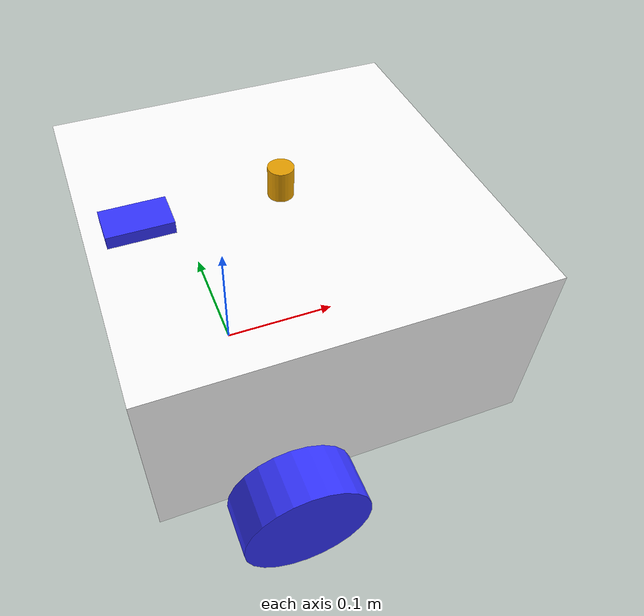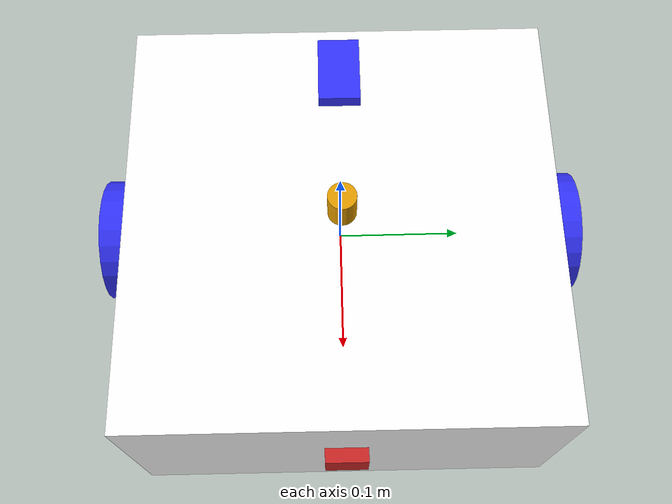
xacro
<?xml version="1.0"?>
<robot xmlns:xacro="http://www.ros.org/wiki/xacro"  name="robot">

    <xacro:include filename="base_robot/robot_core.xacro" />
    <xacro:include filename="base_robot/gazebo_control.xacro" />

    <xacro:include filename="sensors/depth_camera.xacro" />
    <xacro:include filename="sensors/imu.xacro" />
    <xacro:include filename="sensors/gps.xacro" />

</robot>

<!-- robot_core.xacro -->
<robot xmlns:xacro="http://www.ros.org/wiki/xacro" >

    <xacro:include filename="inertial_macros.xacro"/>

    <material name="white">
        <color rgba="1 1 1 1" />
    </material>

    <material name="orange">
        <color rgba="1 0.3 0.1 1"/>
    </material>

    <material name="blue">
        <color rgba="0.2 0.2 1 1"/>
    </material>

    <material name="black">
        <color rgba="0 0 0 1"/>
    </material>

    <!-- BASE LINK -->

    <link name="base_link">

    </link>

    <!-- CHASSIS LINK -->

    <joint name="chassis_joint" type="fixed">
        <parent link="base_link"/>
        <child link="chassis"/>
        <origin xyz="-0.1 0 0"/>
    </joint>

    <link name="chassis">
        <visual>
            <origin xyz="0.15 0 0.075"/>
            <geometry>
                <box size="0.3 0.3 0.15"/>
            </geometry>
            <material name="white"/>
        </visual>
        <collision>
            <origin xyz="0.15 0 0.075"/>
            <geometry>
                <box size="0.3 0.3 0.15"/>
            </geometry>
        </collision>
        <xacro:inertial_box mass="0.5" x="0.3" y="0.3" z="0.15">
            <origin xyz="0.15 0 0.075" rpy="0 0 0"/>
        </xacro:inertial_box>
    </link>

    <gazebo reference="chassis">
        <material>Gazebo/White</material>
    </gazebo>

    <!-- LEFT WHEEL LINK -->

    <joint name="left_wheel_joint" type="continuous">
        <parent link="base_link"/>
        <child link="left_wheel"/>
        <origin xyz="0 0.175 0" rpy="-${pi/2} 0 0" />
        <axis xyz="0 0 1"/>
    </joint>

    <link name="left_wheel">
        <visual>
            <geometry>
                <cylinder radius="0.05" length="0.04"/>
            </geometry>
            <material name="blue"/>
        </visual>
        <collision>
            <geometry>
                <cylinder radius="0.05" length="0.04"/>
            </geometry>
        </collision>
        <xacro:inertial_cylinder mass="0.1" length="0.04" radius="0.05">
            <origin xyz="0 0 0" rpy="0 0 0"/>
        </xacro:inertial_cylinder>
    </link>

    <!-- RIGHT WHEEL LINK -->

    <joint name="right_wheel_joint" type="continuous">
        <parent link="base_link"/>
        <child link="right_wheel"/>
        <origin xyz="0 -0.175 0" rpy="${pi/2} 0 0" />
        <axis xyz="0 0 -1"/>
    </joint>

    <link name="right_wheel">
        <visual>
            <geometry>
                <cylinder radius="0.05" length="0.04"/>
            </geometry>
            <material name="blue"/>
        </visual>
        <collision>
            <geometry>
                <cylinder radius="0.05" length="0.04"/>
            </geometry>
        </collision>
        <xacro:inertial_cylinder mass="0.1" length="0.04" radius="0.05">
            <origin xyz="0 0 0" rpy="0 0 0"/>
        </xacro:inertial_cylinder>
    </link>

    <!-- CASTER WHEEL LINK -->

    <joint name="caster_wheel_joint" type="fixed">
        <parent link="chassis"/>
        <child link="caster_wheel"/>
        <origin xyz="0.24 0 0"/>
    </joint>

    <link name="caster_wheel">
        <visual>
            <geometry>
                <sphere radius="0.05"/>
            </geometry>
            <material name="black"/>
        </visual>
        <collision>
            <geometry>
                <sphere radius="0.05"/>
            </geometry>
        </collision>
        <xacro:inertial_sphere mass="0.1" radius="0.05">
            <origin xyz="0 0 0" rpy="0 0 0"/>
        </xacro:inertial_sphere>
    </link>

    <gazebo reference="caster_wheel">
        <material>Gazebo/Black</material>
        <mu1 value="0.001"/>
        <mu2 value="0.001"/>
    </gazebo>

</robot>

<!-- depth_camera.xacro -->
<robot xmlns:xacro="http://www.ros.org/wiki/xacro" >
    <joint name="camera_joint" type="fixed">
        <parent link="chassis"/>
        <child link="camera_link"/>
        <origin xyz="0.305 0 0.08" rpy="0 0 0"/>
    </joint>

    <link name="camera_link">
        <visual>
            <geometry>
                <box size="0.010 0.03 0.03"/>
            </geometry>
            <material name="red"/>
        </visual>
    </link>

    <joint name="camera_optical_joint" type="fixed">
        <parent link="camera_link"/>
        <child link="camera_link_optical"/>
        <origin xyz="0 0 0" rpy="${-pi/2} 0 ${-pi/2}"/>
    </joint>

    <link name="camera_link_optical"></link>

    <gazebo reference="camera_link">
        <material>Gazebo/Red</material>

        <sensor name="camera" type="depth">
            <pose> 0 0 0 0 0 0 </pose>
            <visualize>true</visualize>
            <update_rate>10</update_rate>
            <camera>
                <horizontal_fov>1.089</horizontal_fov>
                <image>
                    <format>R8G8B8</format>
                    <width>640</width>
                    <height>480</height>
                </image>
                <clip>
                    <near>0.05</near>
                    <far>8.0</far>
                </clip>
            </camera>
            <plugin name="camera_controller" filename="libgazebo_ros_camera.so">
                <frame_name>camera_link_optical</frame_name>
            </plugin>
        </sensor>
    </gazebo>

</robot>

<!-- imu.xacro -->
<robot xmlns:xacro="http://www.ros.org/wiki/xacro" name="imu">
    <joint name="imu_joint" type="fixed">
        <parent link="chassis"/>
        <child link="imu_link"/>
        <origin xyz="0.04 0 0.15" rpy="0 0 0"/>
    </joint>
    <link name="imu_link">
        <visual>
            <geometry>
                <box size="0.05 0.03 0.02"/>
            </geometry>
            <material name="blue"/>
        </visual>
        <collision>
            <geometry>
                <box size="0.05 0.03 0.02"/>
            </geometry>
        </collision>
        <xacro:inertial_box mass="0.05" x="0.05" y="0.03" z="0.02">
            <origin xyz="0 0 0" rpy="0 0 0"/>
        </xacro:inertial_box>
    </link>
    <gazebo reference="imu_link">
        <material>Gazebo/Blue</material>
        <sensor name="imu_sensor" type="imu">
            <always_on>true</always_on>
            <update_rate>50.0</update_rate>
            <plugin name="imu_controller" filename="libgazebo_ros_imu_sensor.so">
                <ros>
                    <argument>~/out:=imu/data</argument>
                </ros>
                <output_type>sensor_msgs/Imu</output_type>
                <frame_name>imu_link</frame_name>
                <linear_acceleration_stddev>0.2</linear_acceleration_stddev>
                <angular_velocity_stddev>0.1</angular_velocity_stddev>
                <orientation_stddev>0.5</orientation_stddev>
            </plugin>
        </sensor>
    </gazebo>
</robot>

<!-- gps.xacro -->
<robot xmlns:xacro="http://www.ros.org/wiki/xacro">

  <joint name="gps_joint" type="fixed">
    <parent link="chassis"/>
    <child link="gps_link"/>
    <origin xyz="0.15 0 0.16" rpy="0 0 0"/>
  </joint>

  <link name="gps_link">
    <visual>
      <origin xyz="0 0 0"/>
      <geometry>
        <cylinder radius="0.01" length="0.03"/>
      </geometry>
    </visual>
  </link>

  <gazebo reference="gps_link">
    <sensor name="gps" type="gps">
      <always_on>true</always_on>
      <update_rate>10</update_rate>

      <gps>
        <position_sensing>
          <horizontal>
            <noise type="gaussian">
              <mean>0.0</mean>
              <stddev>1.5</stddev>            <!-- meters -->
              <bias_mean>0.0</bias_mean>
              <bias_stddev>0.0</bias_stddev>
            </noise>
          </horizontal>
          <vertical>
            <noise type="gaussian">
              <mean>0.0</mean>
              <stddev>3.0</stddev>            <!-- meters -->
              <bias_mean>0.0</bias_mean>
              <bias_stddev>0.0</bias_stddev>
            </noise>
          </vertical>
        </position_sensing>
        <velocity_sensing>
          <horizontal>
            <noise type="gaussian">
              <mean>0.0</mean>
              <stddev>0.1</stddev>
            </noise>
          </horizontal>
          <vertical>
            <noise type="gaussian">
              <mean>0.0</mean>
              <stddev>0.2</stddev>
            </noise>
          </vertical>
        </velocity_sensing>
      </gps>

      <!-- ROS 2 Humble Gazebo Classic GPS plugin -->
      <plugin name="gps_ros_plugin" filename="libgazebo_ros_gps_sensor.so">
        <ros>
          <!-- Final topic will be /gps/data (NavSatFix) -->
          <namespace>/gps</namespace>
          <remapping>~/out:=data</remapping>
        </ros>
      </plugin>
    </sensor>
  </gazebo>

</robot>
